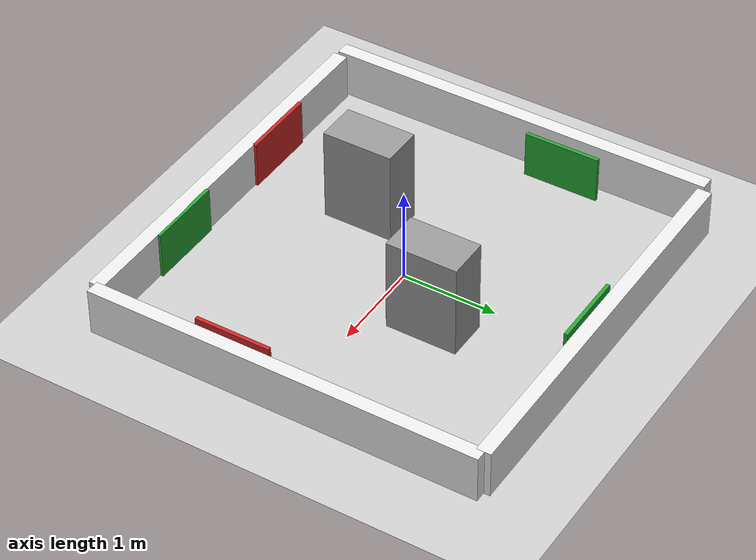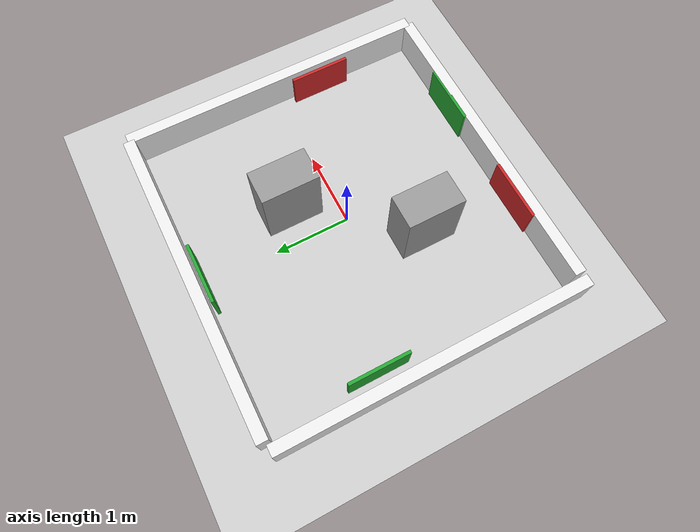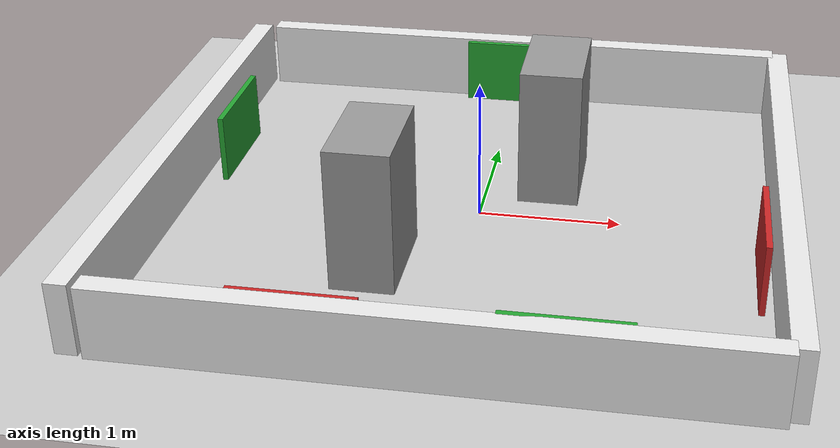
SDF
<sdf version="1.7">
 <world name="test_panels">
  <light name="sun" type="directional">
   <pose>0 0 10 0 -0 0</pose>
   <diffuse>0.8 0.8 0.8 1</diffuse>
   <specular>0.2 0.2 0.2 1</specular>
   <attenuation>
    <range>1000</range>
    <constant>0.9</constant>
    <linear>0.01</linear>
    <quadratic>0.001</quadratic>
   </attenuation>
   <direction>-0.5 0.1 -0.9</direction>
   <spot><inner_angle>0</inner_angle><outer_angle>0</outer_angle><falloff>0</falloff></spot>
  </light>
  <model name="ground_plane">
   <static>1</static>
   <link name="link">
    <collision name="collision">
     <geometry><plane><normal>0 0 1</normal><size>100 100</size></plane></geometry>
     <surface>
      <contact><collide_bitmask>65535</collide_bitmask></contact>
      <friction><ode><mu>100</mu><mu2>50</mu2></ode></friction>
     </surface>
    </collision>
    <visual name="visual">
     <cast_shadows>0</cast_shadows>
     <geometry><plane><normal>0 0 1</normal><size>100 100</size></plane></geometry>
     <material>
      <script><uri>file://media/materials/scripts/gazebo.material</uri><name>Gazebo/Grey</name></script>
     </material>
    </visual>
   </link>
  </model>
  <scene><ambient>0.7 0.7 0.7 1</ambient><background>0.8 0.8 0.8 1</background><shadows>0</shadows></scene>
  <physics type="ode">
   <real_time_update_rate>1000</real_time_update_rate>
   <max_step_size>0.001</max_step_size>
   <real_time_factor>1</real_time_factor>
  </physics>
  <model name="wall_south">
   <static>1</static>
   <pose>0 -2.03819 0.25 0 -0 0</pose>
   <link name="link">
    <collision name="c"><geometry><box><size>4.15 0.15 0.5</size></box></geometry></collision>
    <visual name="v">
     <geometry><box><size>4.15 0.15 0.5</size></box></geometry>
     <material>
      <script><uri>file://media/materials/scripts/gazebo.material</uri><name>Gazebo/White</name></script>
     </material>
    </visual>
   </link>
  </model>
  <model name="wall_north">
   <static>1</static>
   <pose>0 2.08774 0.25 0 -0 0</pose>
   <link name="link">
    <collision name="c"><geometry><box><size>4.15 0.15 0.5</size></box></geometry></collision>
    <visual name="v">
     <geometry><box><size>4.15 0.15 0.5</size></box></geometry>
     <material>
      <script><uri>file://media/materials/scripts/gazebo.material</uri><name>Gazebo/White</name></script>
     </material>
    </visual>
   </link>
  </model>
  <model name="wall_west">
   <static>1</static>
   <pose>-2.18831 -0.014185 0.25 0 -0 0</pose>
   <link name="link">
    <collision name="c"><geometry><box><size>0.15 4.15 0.5</size></box></geometry></collision>
    <visual name="v">
     <geometry><box><size>0.15 4.15 0.5</size></box></geometry>
     <material>
      <script><uri>file://media/materials/scripts/gazebo.material</uri><name>Gazebo/White</name></script>
     </material>
    </visual>
   </link>
  </model>
  <model name="wall_east">
   <static>1</static>
   <pose>2.11151 0.023243 0.25 0 -0 0</pose>
   <link name="link">
    <collision name="c"><geometry><box><size>0.15 4.15 0.5</size></box></geometry></collision>
    <visual name="v">
     <geometry><box><size>0.15 4.15 0.5</size></box></geometry>
     <material>
      <script><uri>file://media/materials/scripts/gazebo.material</uri><name>Gazebo/White</name></script>
     </material>
    </visual>
   </link>
  </model>
  <model name="panel_red_1">
   <static>1</static>
   <pose>-0.8 -1.955 0.25 0 -0 0</pose>
   <link name="link">
    <collision name="c"><geometry><box><size>0.8 0.04 0.5</size></box></geometry></collision>
    <visual name="v">
     <geometry><box><size>0.8 0.04 0.5</size></box></geometry>
     <material>
      <script><uri>file://media/materials/scripts/gazebo.material</uri><name>Gazebo/Red</name></script>
     </material>
    </visual>
   </link>
  </model>
  <model name="panel_red_2">
   <static>1</static>
   <pose>1.955 -0.6 0.25 0 -0 0</pose>
   <link name="link">
    <collision name="c"><geometry><box><size>0.04 0.8 0.5</size></box></geometry></collision>
    <visual name="v">
     <geometry><box><size>0.04 0.8 0.5</size></box></geometry>
     <material>
      <script><uri>file://media/materials/scripts/gazebo.material</uri><name>Gazebo/Red</name></script>
     </material>
    </visual>
   </link>
  </model>
  <model name="panel_green_1">
   <static>1</static>
   <pose>0.8 -1.955 0.25 0 -0 0</pose>
   <link name="link">
    <collision name="c"><geometry><box><size>0.8 0.04 0.5</size></box></geometry></collision>
    <visual name="v">
     <geometry><box><size>0.8 0.04 0.5</size></box></geometry>
     <material>
      <script><uri>file://media/materials/scripts/gazebo.material</uri><name>Gazebo/Green</name></script>
     </material>
    </visual>
   </link>
  </model>
  <model name="panel_green_2">
   <static>1</static>
   <pose>0 1.955 0.25 0 -0 0</pose>
   <link name="link">
    <collision name="c"><geometry><box><size>0.8 0.04 0.5</size></box></geometry></collision>
    <visual name="v">
     <geometry><box><size>0.8 0.04 0.5</size></box></geometry>
     <material>
      <script><uri>file://media/materials/scripts/gazebo.material</uri><name>Gazebo/Green</name></script>
     </material>
    </visual>
   </link>
  </model>
  <model name="panel_green_3">
   <static>1</static>
   <pose>-1.955 0.6 0.25 0 -0 0</pose>
   <link name="link">
    <collision name="c"><geometry><box><size>0.04 0.8 0.5</size></box></geometry></collision>
    <visual name="v">
     <geometry><box><size>0.04 0.8 0.5</size></box></geometry>
     <material>
      <script><uri>file://media/materials/scripts/gazebo.material</uri><name>Gazebo/Green</name></script>
     </material>
    </visual>
   </link>
  </model>
  <gravity>0 0 -9.8</gravity>
  <magnetic_field>6e-06 2.3e-05 -4.2e-05</magnetic_field>
  <atmosphere type="adiabatic"/>
  <audio><device>default</device></audio>
  <spherical_coordinates>
   <surface_model>EARTH_WGS84</surface_model>
   <latitude_deg>0</latitude_deg>
   <longitude_deg>0</longitude_deg>
   <elevation>0</elevation>
   <heading_deg>0</heading_deg>
  </spherical_coordinates>
  <model name="unit_box">
   <pose>-0.594724 -0.760012 0.499996 8e-06 5e-06 0.000111</pose>
   <link name="link">
    <inertial>
     <mass>1</mass>
     <inertia>
      <ixx>0.166667</ixx>
      <ixy>0</ixy>
      <ixz>0</ixz>
      <iyy>0.166667</iyy>
      <iyz>0</iyz>
      <izz>0.166667</izz>
     </inertia>
    </inertial>
    <collision name="collision"><geometry><box><size>0.43642 0.747209 1</size></box></geometry></collision>
    <visual name="visual">
     <geometry><box><size>0.43642 0.747209 1</size></box></geometry>
     <material>
      <script><name>Gazebo/Grey</name><uri>file://media/materials/scripts/gazebo.material</uri></script>
     </material>
    </visual>
   </link>
  </model>
  <model name="unit_box_clone">
   <pose>0.461724 0.599072 0.499996 -8e-06 -5e-06 -0.000215</pose>
   <link name="link">
    <inertial>
     <mass>1</mass>
     <inertia>
      <ixx>0.166667</ixx>
      <ixy>0</ixy>
      <ixz>0</ixz>
      <iyy>0.166667</iyy>
      <iyz>0</iyz>
      <izz>0.166667</izz>
     </inertia>
    </inertial>
    <collision name="collision"><geometry><box><size>0.43642 0.747209 1</size></box></geometry></collision>
    <visual name="visual">
     <geometry><box><size>0.43642 0.747209 1</size></box></geometry>
     <material>
      <script><name>Gazebo/Grey</name><uri>file://media/materials/scripts/gazebo.material</uri></script>
     </material>
    </visual>
   </link>
  </model>
 </world>
</sdf>
